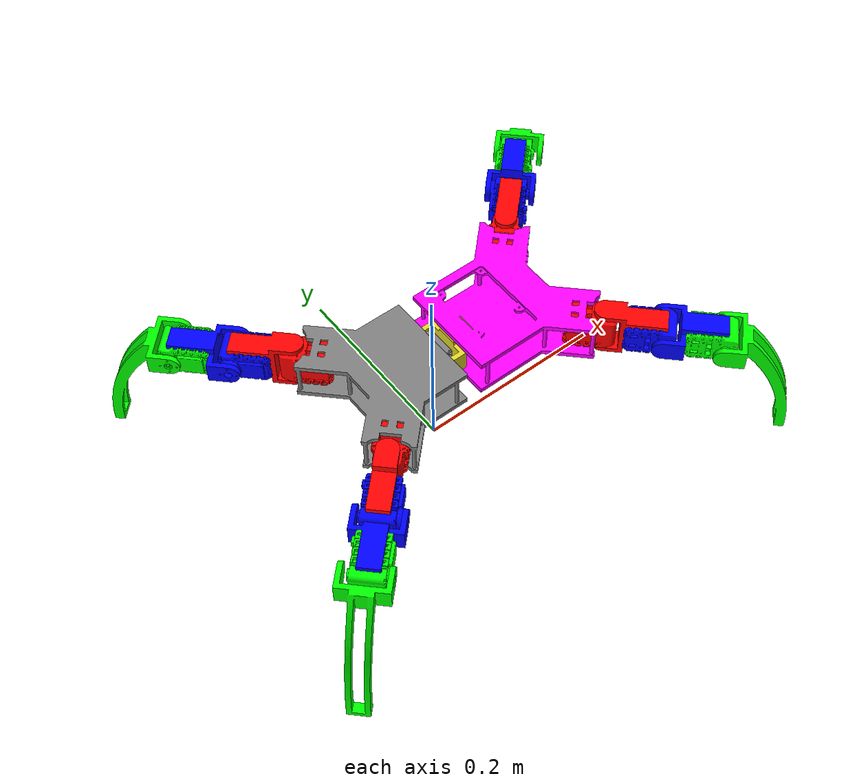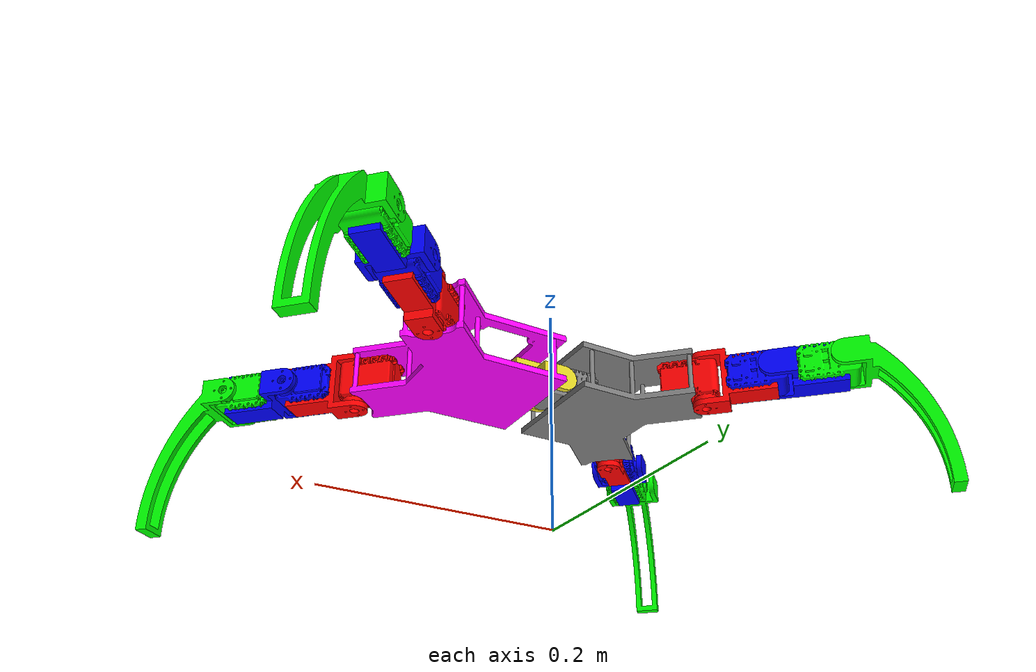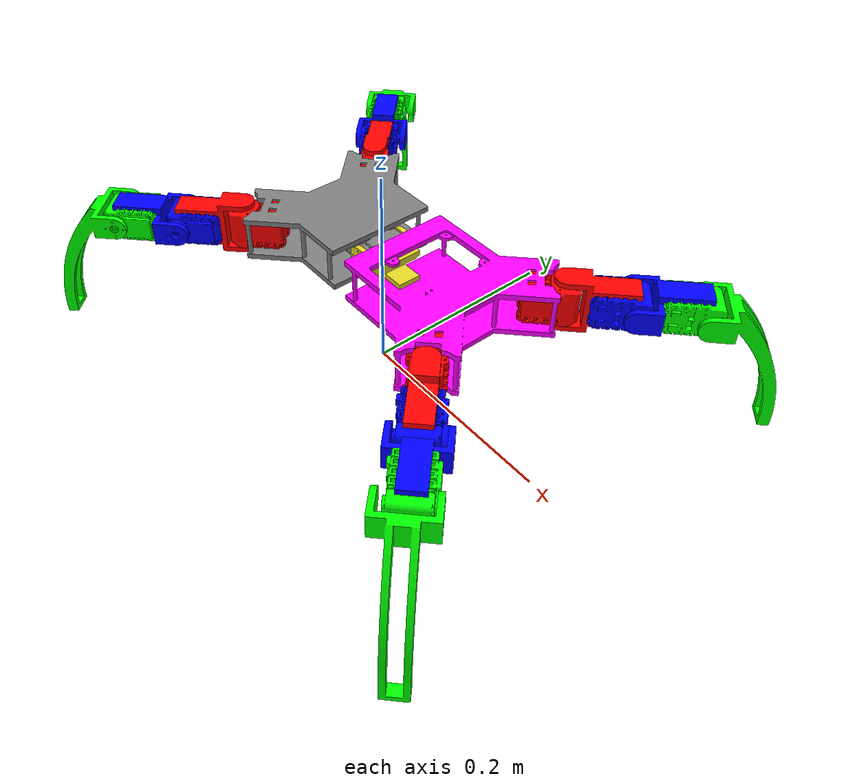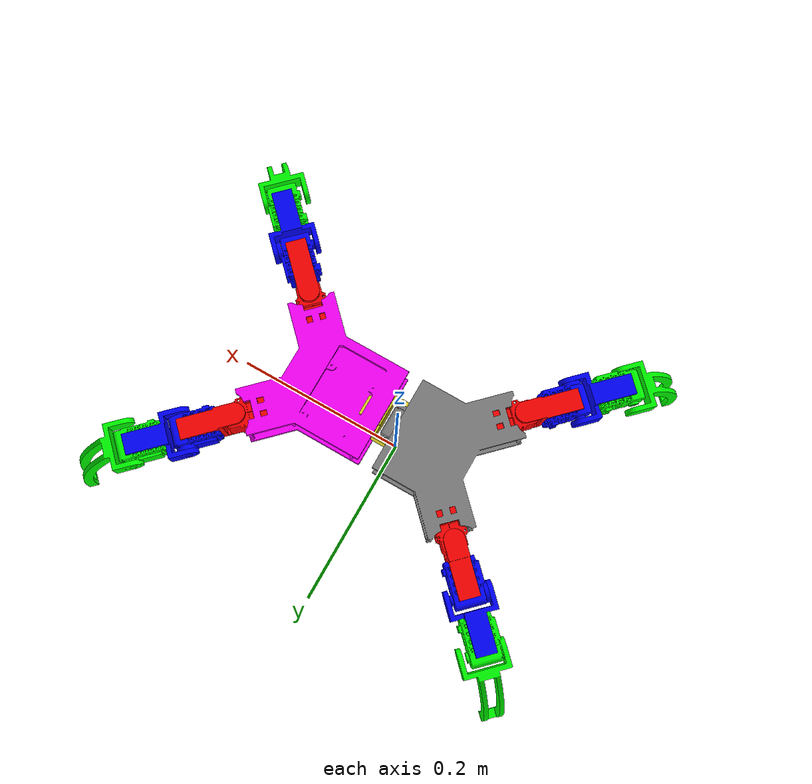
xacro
<?xml version="1.0"?>
<robot name="quaro-body" xmlns:xacro="http://ros.org/wiki/xacro">
  <xacro:property name="pi" value="3.1415"/>
  <xacro:property name="version" value=".0.0"/>
  <xacro:include filename="$(find quaro_description)/urdf/common/colors.xacro"/>
  <xacro:include filename="$(find quaro_description)/urdf/leg/leg${version}.xacro"/>
  <xacro:include filename="$(find quaro_description)/urdf/body/body${version}.xacro"/>
  <xacro:include filename="$(find quaro_description)/urdf/quaro.gazebo.xacro"/>
  <xacro:include filename="$(find quaro_description)/urdf/common/ax12a.xacro"/>

  <xacro:property name="scale" value="${1e-3}"/>
  <xacro:property name="scale_mm" value="${1*scale}"/>
  <xacro:property name="scale_mm2" value="${scale_mm*scale_mm}"/>
  <xacro:property name="gtoKg" value="1e-3"/>
  <xacro:property name="angle_lim_low" value="${-8/18*pi}"/>
  <xacro:property name="angle_lim_high" value="${8/18*pi}"/>

  <!-- first link -->
  <link name="dummy-link"/>

  <joint name="dummy-base" type="fixed">
    <parent link="dummy-link"/>
    <child link="back"/>
    <origin rpy="0 0 0" xyz="${0*scale} ${0*scale} ${150*scale}"/>
  </joint>
  <xacro:body sensors="none"/>
  <!-- Front Left -->
  <xacro:leg n="0" x="132.63" y="74.77" z="-21" rpy="0 0 ${1*pi/4}" parent="front"/>
  <!-- Front Right -->
  <xacro:leg n="1" x="132.63" y="-74.77" z="-21" rpy="0 0 -${1*pi/4}" parent="front"/>
  <!-- Back Left -->
  <xacro:leg n="2" x="-107.63" y="74.77" z="-21" rpy="0 0 ${3*pi/4}" parent="back"/>
  <!-- Back Right -->
  <xacro:leg n="3" x="-107.63" y="-74.77" z="-21" rpy="0 0 -${3*pi/4}" parent="back"/>

</robot>

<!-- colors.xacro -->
<robot name="quaro-colors" xmlns:xacro="http://ros.org/wiki/xacro">

<!-- Materials -->

<material name="black">
  <color rgba="0 0 0 1"/>
</material>

<material name="white">
  <color rgba="1 1 1 1"/>
</material>

<material name="gray">
  <color rgba="0.5 0.5 0.5 1"/>
</material>

<material name="blue">
  <color rgba="0 0 1 1"/>
</material>

<material name="blue_light">
  <color rgba="0 0 0.5 1"/>
</material>

<material name="red">
  <color rgba="1 0 0 1"/>
</material>

<material name="red_light">
  <color rgba="0.5 0 0 1"/>
</material>

<material name="green">
  <color rgba="0 1 0 1"/>
</material>

<material name="green_light">
  <color rgba="0 0.5 0 1"/>
</material>

<material name="cyan">
  <color rgba="1 1 0 1"/>
</material>

<material name="cyan_light">
  <color rgba="0.5 0.5 0 1"/>
</material>

<material name="turcoise">
  <color rgba="0 1 1 1"/>
</material>

<material name="turcoise_light">
  <color rgba="0 0.5 0.5 1"/>
</material>

<material name="pink">
  <color rgba="1 0 1 1"/>
</material>

<material name="pink_light">
  <color rgba="0.5 0 0.5 1"/>
</material>

</robot>

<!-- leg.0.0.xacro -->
<robot name="quaro-leg" xmlns:xacro="http://ros.org/wiki/xacro">
  <!-- parameter n is the leg number-->
  <xacro:macro name="leg" params="n x y z rpy parent">
    <!-- 0 value in the inertia tensor can cause the robot to crash and
         sets the link to their origin in the world frame.
    -->
    <xacro:property name="zero" value="0.0"/>
    <xacro:property name="effort" value="1.47"/>
    <xacro:property name="velocity" value='0.1'/>
    <!-- first link -->
    <xacro:ax12a name="hip${n}-servo" rpy="0 ${pi} 0" color="red"/>

    <joint name="hip-link${n}" type="fixed">
      <parent link="${parent}"/>
      <child link="hip${n}-servo"/>
      <origin rpy="${rpy}" xyz="${x*scale} ${y*scale} ${z*scale}"/>
    </joint>

    <link name="thigh${n}">
      <visual>
        <geometry>
          <mesh filename="package://quaro_description/meshes/link-hip.stl" scale="${scale} ${scale} ${scale}"/>
        </geometry>
        <material name="red"/>
        <origin rpy="${0} 0 -${pi/2}" xyz="${24.10*scale} -${0*scale} -${0*scale}"/>
      </visual>
      <inertial>
        <mass value="${19.19*gtoKg}" />
        <origin rpy="${pi} 0 ${pi/2}" xyz="${24.10*scale} -${0*scale} -${0*scale}"/>
        <inertia  ixx="${1783.52*scale_mm2*gtoKg}"
                ixy="${zero*scale_mm2*gtoKg}"
                ixz="${zero*scale_mm2*gtoKg}"
                iyy="${6524.07*scale_mm2*gtoKg}"
                iyz="${-170.99*scale_mm2*gtoKg}"
                izz="${6788.11*scale_mm2*gtoKg}" />
      </inertial>
      <collision>
         <geometry>
           <mesh filename="package://quaro_description/meshes/link-hip.stl" scale="${scale} ${scale} ${scale}"/>
         </geometry>
         <origin rpy="${0} 0 -${pi/2}" xyz="${24.10*scale} -${0*scale} -${0*scale}"/>
       </collision>
    </link>

    <joint name="hip${n}" type="revolute">
      <parent link="hip${n}-servo"/>
      <child link="thigh${n}"/>
      <origin rpy="0 0 0" xyz="${0*scale} ${0*scale} ${0*scale}"/>
      <axis xyz="0 0 1"/>
      <limit effort="${effort}" lower="${-pi/3}" upper="${pi/3}" velocity="${velocity}"/>
    </joint>

    <xacro:ax12a name="knee${n}-servo" rpy="0 0 0" color="blue"/>

    <joint name="knee${n}-link" type="fixed">
      <parent link="thigh${n}"/>
      <child link="knee${n}-servo"/>
      <origin rpy="-${pi/2} ${pi} 0" xyz="${57.35*scale} ${0.07*scale} -${0.5*scale}"/>
    </joint>

    <link name="shin${n}">
      <visual>
        <geometry>
          <mesh filename="package://quaro_description/meshes/link-knee.stl" scale="${scale} ${scale} ${scale}"/>
        </geometry>
        <material name="blue"/>
        <origin rpy="${0} ${pi/2} ${pi/2}" xyz="-${23.63*scale} ${0*scale} ${0.31*scale}"/>
      </visual>
      <inertial>
        <mass value="${20.73*gtoKg}" />
        <origin rpy="${0} ${pi/2} ${pi/2}" xyz="-${23.63*scale} ${0*scale} ${0.31*scale}"/>
        <inertia  ixx="${8962.80*scale_mm2*gtoKg}"
                ixy="${-167.48*scale_mm2*gtoKg}"
                ixz="${zero*scale_mm2*gtoKg}"
                iyy="${6916.45*scale_mm2*gtoKg}"
                iyz="${zero*scale_mm2*gtoKg}"
                izz="${10135.24*scale_mm2*gtoKg}" />
      </inertial>
      <collision>
         <geometry>
           <mesh filename="package://quaro_description/meshes/link-knee.stl" scale="${scale} ${scale} ${scale}"/>
         </geometry>
         <origin rpy="${0} ${pi/2} ${pi/2}" xyz="-${23.63*scale} ${0*scale} ${0.31*scale}"/>
       </collision>
    </link>

    <joint name="knee${n}" type="revolute">
      <parent link="knee${n}-servo"/>
      <child link="shin${n}"/>
      <origin rpy="0 0 0" xyz="${0*scale} 0 0"/>
      <axis xyz="0 0 1"/>
      <limit effort="${effort}" lower="${-pi/3}" upper="${pi/3}" velocity="${velocity}"/>
    </joint>

    <xacro:ax12a name="ankle${n}-servo" rpy="0 0 0" color="green"/>

    <joint name="ankle${n}-link" type="fixed">
      <parent link="shin${n}"/>
      <child link="ankle${n}-servo"/>
      <origin rpy="${0} ${0} ${0}" xyz="-${58*scale} 0 0"/>
    </joint>

    <link name="foot${n}">
      <visual>
        <geometry>
          <mesh filename="package://quaro_description/meshes/link-foot.stl" scale="${scale} ${scale} ${scale}"/>
        </geometry>
        <material name="green"/>
        <origin rpy="${0} 0 ${0}" xyz="${35.02*scale} -${28.64*scale} ${2.64*scale}"/>
      </visual>
      <inertial>
        <mass value="${27.98*gtoKg}" />
        <origin ryp="0 0 0" xyz="${35.02*scale} -${28.64*scale} ${2.64*scale}"/>

        <inertia  ixx="${44410.23*scale_mm2*gtoKg}"
                ixy="${-22384.35*scale_mm2*gtoKg}"
                ixz="${-249.17*scale_mm2*gtoKg}"
                iyy="${20692.66*scale_mm2*gtoKg}"
                iyz="${202.94*scale_mm2*gtoKg}"
                izz="${55471.08*scale_mm2*gtoKg}" />
      </inertial>
      <surface>
        <friction>
          <ode>
            <mu>1</mu>
            <mu2>1</mu2>
          </ode>
        </friction>
      </surface>
      <collision>
         <geometry>
           <mesh filename="package://quaro_description/meshes/link-foot.stl" scale="${scale} ${scale} ${scale}"/>
         </geometry>
           <origin rpy="${0} 0 ${0}" xyz="${35.02*scale} -${28.64*scale} ${2.64*scale}"/>
       </collision>
    </link>

    <joint name="ankle${n}" type="revolute">
      <parent link="ankle${n}-servo"/>
      <child link="foot${n}"/>
      <origin rpy="0 ${pi} 0" xyz="${0*scale} 0 0"/>
      <axis xyz="0 0 1"/>
      <limit effort="${effort}" lower="${-pi/3}" upper="${pi/3}" velocity="${velocity}"/>
    </joint>

    <link name="eff${n}"/>

    <joint name="eff${n}-joint" type="fixed">
      <parent link="foot${n}"/>
      <child link="eff${n}"/>
      <origin xyz="${70*scale} -${115*scale} 0" rpy="-${pi/2} 0 0"/>
    </joint>

  </xacro:macro>
</robot>

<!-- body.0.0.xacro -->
<robot name="quaro-body" xmlns:xacro="http://ros.org/wiki/xacro">
  <!-- Sensor param will be used later when stereo camera and other sensors will be installed. -->

  <!-- 0 value in the inertia tensor can cause the robot to crash and
       sets the link to their origin in the world frame.
  -->
  <xacro:property name="zero" value="0.1"/>
  <!-- Servo does 15kgf.cm-->
  <xacro:property name="effort" value="1.471"/>
  <!-- Servo has a rotation of 59 RPM -> 6.178465545 rad/sec -->
  <xacro:property name="velocity" value='6.178465545'/>

  <xacro:macro name="body" params="sensors">

    <link name="back">
      <visual>
        <geometry>
          <mesh filename="package://quaro_description/meshes/back.stl" scale="${scale} ${scale} ${scale}"/>
        </geometry>
        <material name="gray"/>
        <origin rpy="0 0 0" xyz="${0*scale} 0 ${0*scale}"/>
      </visual>
      <inertial>
        <mass value="${125.63*gtoKg}" />
        <origin rpy="0 0 0" xyz="-${54.98*scale} ${0*scale} -${21.33*scale}"/>

        <inertia  ixx="${296016.48*scale_mm2*gtoKg}"
                  ixy="${zero*scale_mm2*gtoKg}"
                  ixz="${148916.20*scale_mm2*gtoKg}"
                  iyy="${593729.76*scale_mm2*gtoKg}"
                  iyz="${zero*scale_mm2*gtoKg}"
                  izz="${691025.98*scale_mm2*gtoKg}" />
      </inertial>
      <collision>
        <geometry>
          <mesh filename="package://quaro_description/meshes/back.stl" scale="${scale} ${scale} ${scale}"/>
        </geometry>
        <origin rpy="0 0 0" xyz="${0*scale} 0 ${0*scale}"/>
      </collision>
    </link>

    <xacro:ax12a name="chest-servo" rpy="0 0 0" color="gray"/>

    <link name="spine">
      <visual>
        <geometry>
          <mesh filename="package://quaro_description/meshes/link-chest.stl" scale="${scale} ${scale} ${scale}"/>
        </geometry>
        <material name="yellow"/>
        <origin rpy="0 0 0" xyz="${16.58*scale} -${0.56*scale} ${0*scale}"/>
      </visual>
      <inertial>
        <mass value="${15.89*gtoKg}" />
        <origin rpy="0 0 0" xyz="${16.58*scale} -${0.56*scale} ${0*scale}"/>
        <inertia  ixx="${5271.72*scale_mm2*gtoKg}"
                  ixy="${117.19*scale_mm2*gtoKg}"
                  ixz="${zero*scale_mm2*gtoKg}"
                  iyy="${3500.43*scale_mm2*gtoKg}"
                  iyz="${0.01*scale_mm2*gtoKg}"
                  izz="${5925.70*scale_mm2*gtoKg}" />
      </inertial>
      <collision>
        <geometry>
          <mesh filename="package://quaro_description/meshes/link-chest.stl" scale="${scale} ${scale} ${scale}"/>
        </geometry>
        <origin rpy="0 0 0" xyz="${16.58*scale} -${0.56*scale} ${0*scale}"/>
      </collision>
    </link>

    <link name="front">
      <visual>
        <geometry>
          <mesh filename="package://quaro_description/meshes/front.stl" scale="${scale} ${scale} ${scale}"/>
        </geometry>
        <material name="pink"/>
        <origin rpy="${0} ${0} ${0}" xyz="${0*scale} ${0*scale} ${0*scale}"/>
      </visual>
      <inertial>
        <mass value="${128.96*gtoKg}" />
        <origin rpy="0 0 0" xyz="${71.80*scale} ${0.05*scale} -${24.62*scale}"/>
        <inertia  ixx="${327047.38*scale_mm2*gtoKg}"
                  ixy="${314.55*scale_mm2*gtoKg}"
                  ixz="${-219751.03*scale_mm2*gtoKg}"
                  iyy="${984722.31*scale_mm2*gtoKg}"
                  iyz="${-22.94*scale_mm2*gtoKg}"
                  izz="${1072193.50*scale_mm2*gtoKg}" />
      </inertial>
      <collision>
        <geometry>
          <mesh filename="package://quaro_description/meshes/front.stl" scale="${scale} ${scale} ${scale}"/>
        </geometry>
        <origin rpy="0 0 0" xyz="0 0 ${0*scale}"/>
      </collision>
    </link>

    <joint name="servo-link" type="fixed">
      <parent link="back"/>
      <child link="chest-servo"/>
      <origin rpy="${pi/2} ${pi} 0" xyz="${0*scale} -${0.17*scale} -${21*scale}"/>
    </joint>

    <joint name="chest" type="revolute">
      <parent link="chest-servo"/>
      <child link="spine"/>
      <origin rpy="${-pi/2} ${0} ${-pi}" xyz="-${0*scale} -${0*scale} ${0*scale}"/>
      <axis xyz="0 1 0"/>
      <limit effort="${effort}" lower="${-pi/3}" upper="${pi/3}" velocity="${velocity}"/>
    </joint>

    <joint name="last" type="fixed">
      <parent link="spine"/>
      <child link="front"/>
      <origin ryp="${0} ${0} ${0}" xyz="${16.58*scale} ${0*scale} ${21*scale}"/>
    </joint>

  </xacro:macro>
</robot>

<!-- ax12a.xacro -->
<robot name="ax12a-servo" xmlns:xacro="http://ros.org/wiki/xacro">
  <xacro:macro name="ax12a" params="name rpy color">
    <link name="${name}">
      <visual>
        <geometry>
          <mesh filename="package://quaro_description/meshes/AX-12A.stl" scale="${scale} ${scale} ${scale}"/>
        </geometry>
        <material name="${color}"/>
        <origin rpy="${rpy}" xyz="${0*scale} ${0*scale} ${0*scale}"/>
      </visual>
      <inertial>
        <mass value="${53.01*gtoKg}" />
        <origin rpy="${rpy}" xyz="${12.61*scale} ${0*scale} ${1.21*scale}"/>

        <inertia  ixx="${6917994*scale_mm2*gtoKg}"
                ixy="${-16.968233*scale_mm2*gtoKg}"
                ixz="${187361.046875*scale_mm2*gtoKg}"
                iyy="${12482635*scale_mm2*gtoKg}"
                iyz="${2.895725*scale_mm2*gtoKg}"
                izz="${10437801*scale_mm2*gtoKg}" />
      </inertial>
      <collision>
         <geometry>
           <mesh filename="package://quaro_description/meshes/AX-12A.stl" scale="${scale} ${scale} ${scale}"/>
         </geometry>
         <origin rpy="${rpy}" xyz="${0*scale} ${0*scale} ${0*scale}"/>
       </collision>
    </link>
  </xacro:macro>
</robot>
